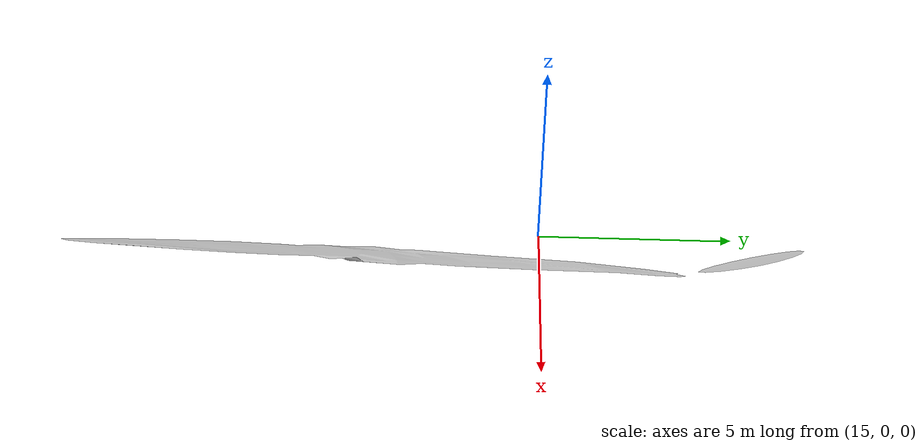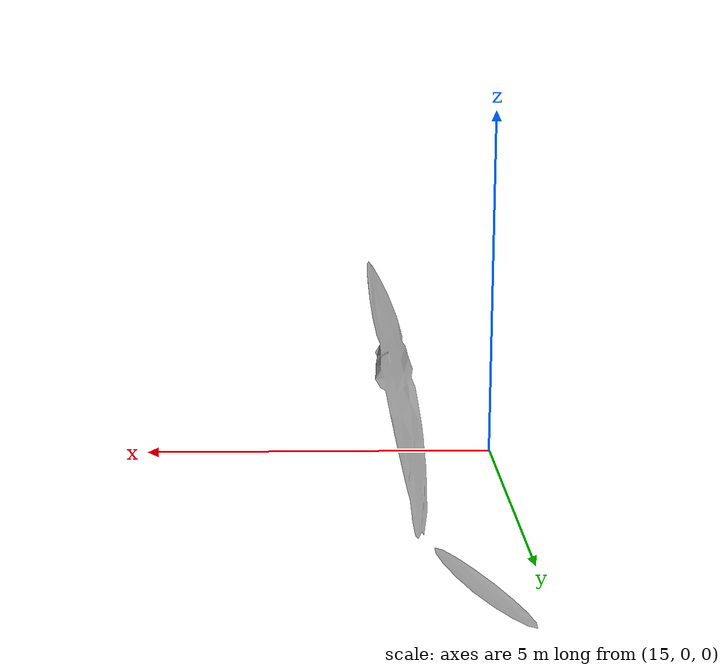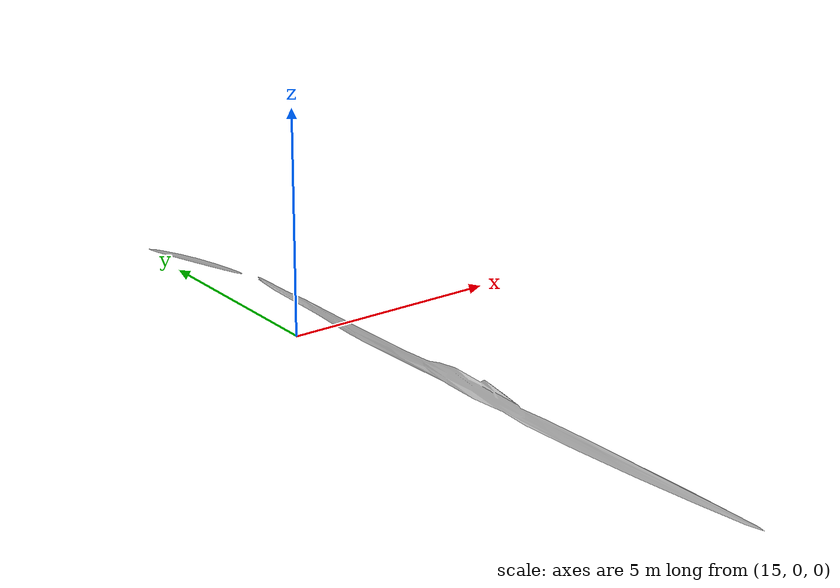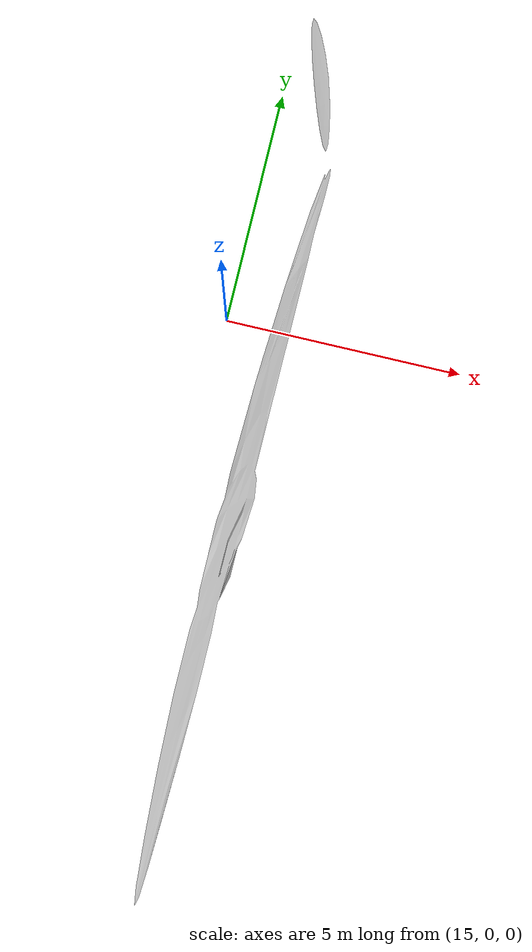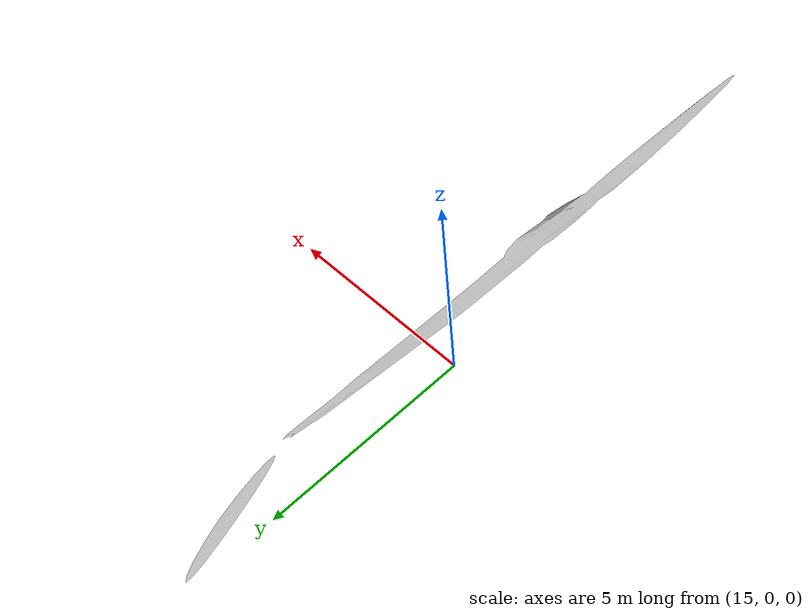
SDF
<?xml version="1.0"?>
<sdf version="1.9">
  <model name="fuel_trail">
    <static>true</static>
    <link name="link">
      <visual name="visual">
        <pose>0 0 0.01 1.57079632679 0 0</pose>
        <geometry>
          <mesh>
            <uri>model://gale_crater_patch2/meshes/fuel_trail.obj</uri>
          </mesh>
        </geometry>
      </visual>
    </link>
  </model>
</sdf>
